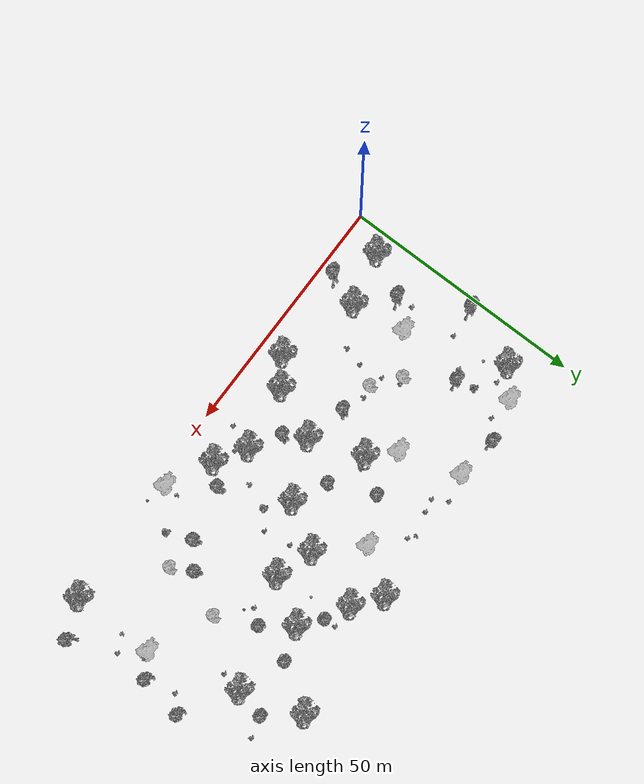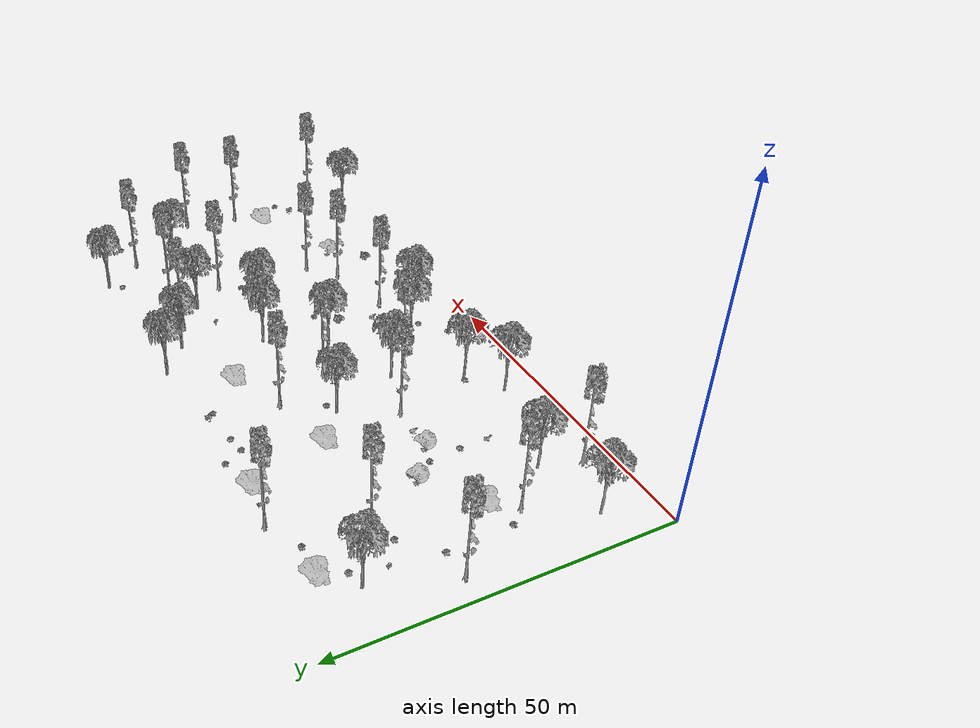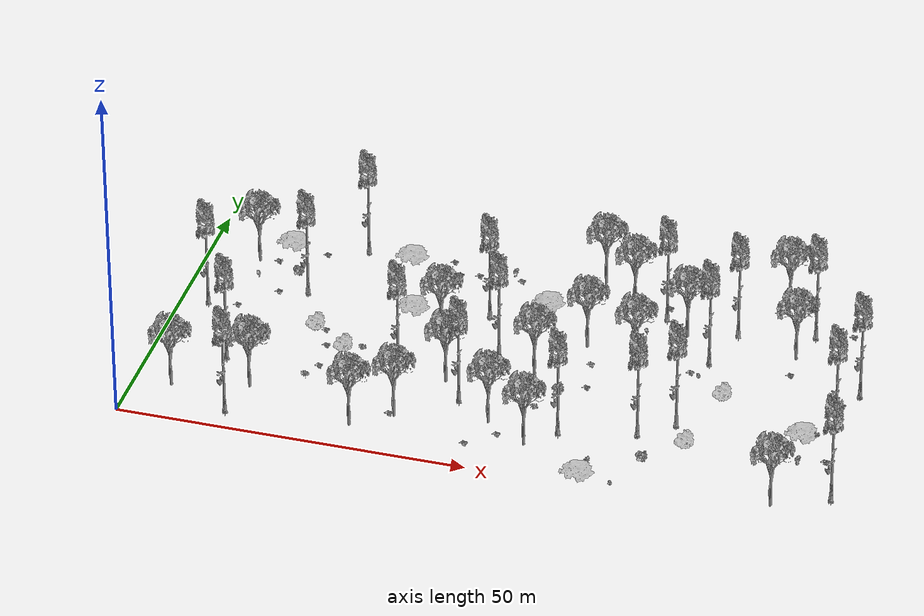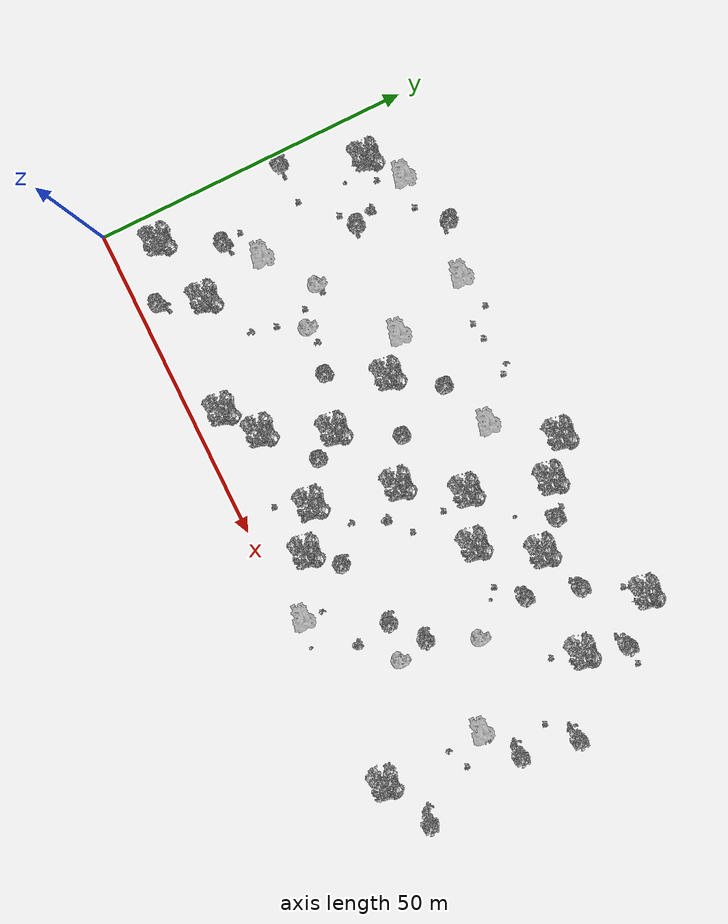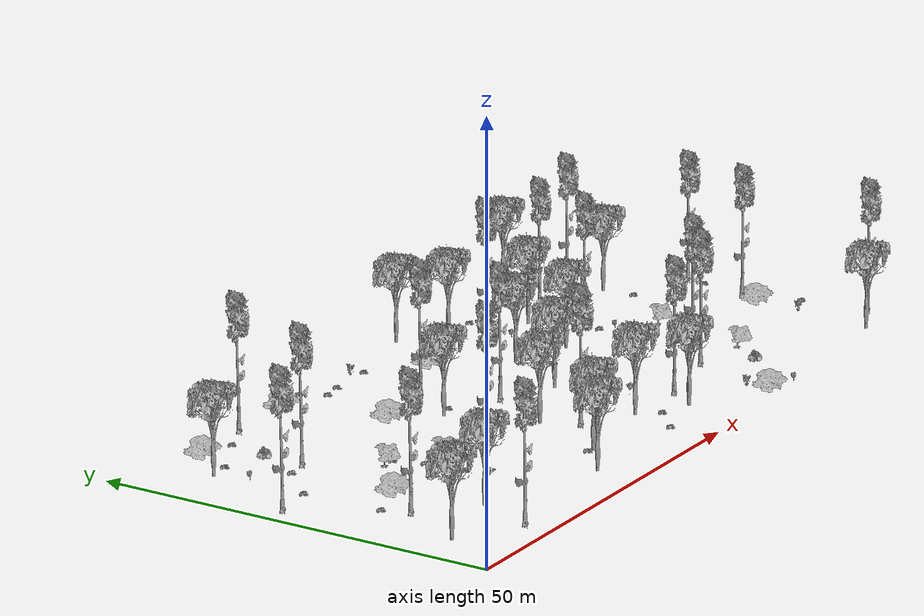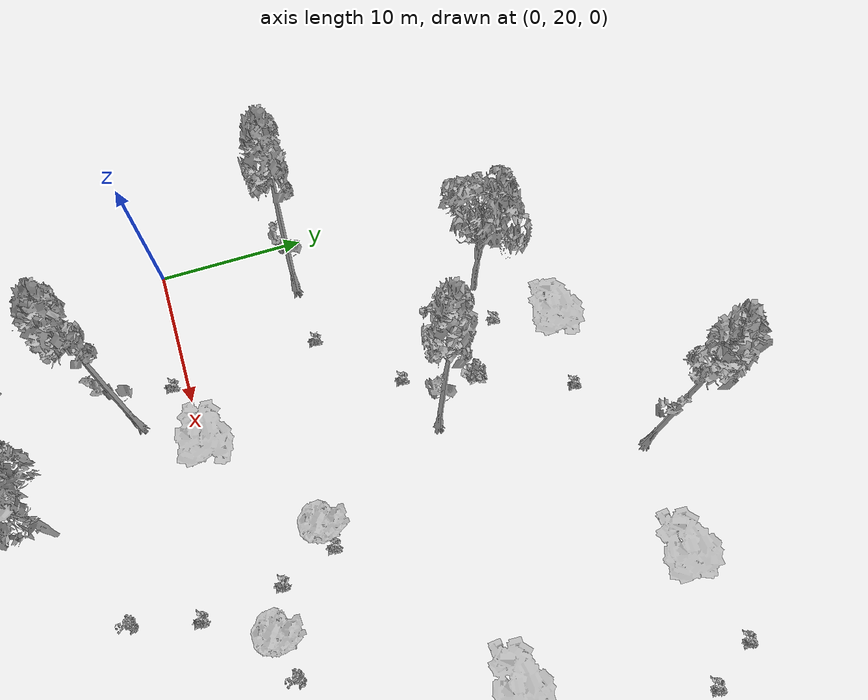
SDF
<sdf version="1.7">
 <world name="forest">
  <model name="Tree 1">
   <static>1</static>
   <pose>78.04902566851167 41.15128095072997 0 1.57079 -0 0</pose>
   <link name="link">
    <collision name="collision">
     <geometry><mesh><scale>3.5 5 3.5</scale><uri>model://tree_9/meshes/tree_9.obj</uri></mesh></geometry>
    </collision>
    <visual name="visual">
     <geometry><mesh><scale>3.5 5 3.5</scale><uri>model://tree_9/meshes/tree_9.obj</uri></mesh></geometry>
    </visual>
   </link>
  </model>
  <model name="Tree 2">
   <static>1</static>
   <pose>5.2990256685116774 7.817947617396648 0 1.57079 -0 0</pose>
   <link name="link">
    <collision name="collision">
     <geometry><mesh><scale>3.5 5 3.5</scale><uri>model://tree_2/meshes/tree_2.obj</uri></mesh></geometry>
    </collision>
    <visual name="visual">
     <geometry><mesh><scale>3.5 5 3.5</scale><uri>model://tree_2/meshes/tree_2.obj</uri></mesh></geometry>
    </visual>
   </link>
  </model>
  <model name="Tree 4">
   <static>1</static>
   <pose>41.674025668511675 18.92905872850774 0 1.57079 -0 0</pose>
   <link name="link">
    <collision name="collision">
     <geometry><mesh><scale>3.5 5 3.5</scale><uri>model://tree_2/meshes/tree_2.obj</uri></mesh></geometry>
    </collision>
    <visual name="visual">
     <geometry><mesh><scale>3.5 5 3.5</scale><uri>model://tree_2/meshes/tree_2.obj</uri></mesh></geometry>
    </visual>
   </link>
  </model>
  <model name="Tree 7">
   <static>1</static>
   <pose>65.92402566851167 30.040169839618855 0 1.57079 -0 0</pose>
   <link name="link">
    <collision name="collision">
     <geometry><mesh><scale>3.5 5 3.5</scale><uri>model://tree_2/meshes/tree_2.obj</uri></mesh></geometry>
    </collision>
    <visual name="visual">
     <geometry><mesh><scale>3.5 5 3.5</scale><uri>model://tree_2/meshes/tree_2.obj</uri></mesh></geometry>
    </visual>
   </link>
  </model>
  <model name="Tree 10">
   <static>1</static>
   <pose>11.361525668511678 44.85498465443368 0 1.57079 -0 0</pose>
   <link name="link">
    <collision name="collision">
     <geometry><mesh><scale>3 2 3</scale><uri>model://tree_3/meshes/tree_3.obj</uri></mesh></geometry>
    </collision>
    <visual name="visual">
     <geometry><mesh><scale>3 2 3</scale><uri>model://tree_3/meshes/tree_3.obj</uri></mesh></geometry>
    </visual>
   </link>
  </model>
  <model name="Tree 11">
   <static>1</static>
   <pose>59.861525668511675 11.521651321100343 0 1.57079 -0 0</pose>
   <link name="link">
    <collision name="collision">
     <geometry><mesh><scale>3.5 5 3.5</scale><uri>model://tree_9/meshes/tree_9.obj</uri></mesh></geometry>
    </collision>
    <visual name="visual">
     <geometry><mesh><scale>3.5 5 3.5</scale><uri>model://tree_9/meshes/tree_9.obj</uri></mesh></geometry>
    </visual>
   </link>
  </model>
  <model name="Tree 13">
   <static>1</static>
   <pose>96.23652566851167 22.632762432211464 0 1.57079 -0 0</pose>
   <link name="link">
    <collision name="collision">
     <geometry><mesh><scale>3.5 5 3.5</scale><uri>model://tree_9/meshes/tree_9.obj</uri></mesh></geometry>
    </collision>
    <visual name="visual">
     <geometry><mesh><scale>3.5 5 3.5</scale><uri>model://tree_9/meshes/tree_9.obj</uri></mesh></geometry>
    </visual>
   </link>
  </model>
  <model name="Tree 16">
   <static>1</static>
   <pose>32.580275668511675 33.74387354332255 0 1.57079 -0 0</pose>
   <link name="link">
    <collision name="collision">
     <geometry><mesh><scale>3 2 3</scale><uri>model://tree_3/meshes/tree_3.obj</uri></mesh></geometry>
    </collision>
    <visual name="visual">
     <geometry><mesh><scale>3 2 3</scale><uri>model://tree_3/meshes/tree_3.obj</uri></mesh></geometry>
    </visual>
   </link>
  </model>
  <model name="Tree 19">
   <static>1</static>
   <pose>56.830275668511675 48.558688358137374 0 1.57079 -0 0</pose>
   <link name="link">
    <collision name="collision">
     <geometry><mesh><scale>3.5 5 3.5</scale><uri>model://tree_2/meshes/tree_2.obj</uri></mesh></geometry>
    </collision>
    <visual name="visual">
     <geometry><mesh><scale>3.5 5 3.5</scale><uri>model://tree_2/meshes/tree_2.obj</uri></mesh></geometry>
    </visual>
   </link>
  </model>
  <model name="Tree 20">
   <static>1</static>
   <pose>44.705275668511675 15.225355024804045 0 1.57079 -0 0</pose>
   <link name="link">
    <collision name="collision">
     <geometry><mesh><scale>3.5 5 3.5</scale><uri>model://tree_9/meshes/tree_9.obj</uri></mesh></geometry>
    </collision>
    <visual name="visual">
     <geometry><mesh><scale>3.5 5 3.5</scale><uri>model://tree_9/meshes/tree_9.obj</uri></mesh></geometry>
    </visual>
   </link>
  </model>
  <model name="Tree 22">
   <static>1</static>
   <pose>20.45527566851168 26.33646613591516 0 1.57079 -0 0</pose>
   <link name="link">
    <collision name="collision">
     <geometry><mesh><scale>4 2.5 4</scale><uri>model://tree_1/meshes/tree_1.obj</uri></mesh></geometry>
    </collision>
    <visual name="visual">
     <geometry><mesh><scale>4 2.5 4</scale><uri>model://tree_1/meshes/tree_1.obj</uri></mesh></geometry>
    </visual>
   </link>
  </model>
  <model name="Tree 25">
   <static>1</static>
   <pose>87.14277566851167 37.44757724702626 0 1.57079 -0 0</pose>
   <link name="link">
    <collision name="collision">
     <geometry><mesh><scale>3.5 5 3.5</scale><uri>model://tree_2/meshes/tree_2.obj</uri></mesh></geometry>
    </collision>
    <visual name="visual">
     <geometry><mesh><scale>3.5 5 3.5</scale><uri>model://tree_2/meshes/tree_2.obj</uri></mesh></geometry>
    </visual>
   </link>
  </model>
  <model name="Tree 26">
   <static>1</static>
   <pose>14.392775668511678 4.114243913692931 0 1.57079 -0 0</pose>
   <link name="link">
    <collision name="collision">
     <geometry><mesh><scale>3.5 5 3.5</scale><uri>model://tree_9/meshes/tree_9.obj</uri></mesh></geometry>
    </collision>
    <visual name="visual">
     <geometry><mesh><scale>3.5 5 3.5</scale><uri>model://tree_9/meshes/tree_9.obj</uri></mesh></geometry>
    </visual>
   </link>
  </model>
  <model name="Tree 28">
   <static>1</static>
   <pose>50.767775668511675 39.9167130494954 0 1.57079 -0 0</pose>
   <link name="link">
    <collision name="collision">
     <geometry><mesh><scale>3 2 3</scale><uri>model://tree_3/meshes/tree_3.obj</uri></mesh></geometry>
    </collision>
    <visual name="visual">
     <geometry><mesh><scale>3 2 3</scale><uri>model://tree_3/meshes/tree_3.obj</uri></mesh></geometry>
    </visual>
   </link>
  </model>
  <model name="Tree 29">
   <static>1</static>
   <pose>99.26777566851167 6.583379716162071 0 1.57079 -0 0</pose>
   <link name="link">
    <collision name="collision">
     <geometry><mesh><scale>3.5 5 3.5</scale><uri>model://tree_9/meshes/tree_9.obj</uri></mesh></geometry>
    </collision>
    <visual name="visual">
     <geometry><mesh><scale>3.5 5 3.5</scale><uri>model://tree_9/meshes/tree_9.obj</uri></mesh></geometry>
    </visual>
   </link>
  </model>
  <model name="Tree 31">
   <static>1</static>
   <pose>75.01777566851167 17.694490827273185 0 1.57079 -0 0</pose>
   <link name="link">
    <collision name="collision">
     <geometry><mesh><scale>3.5 5 3.5</scale><uri>model://tree_9/meshes/tree_9.obj</uri></mesh></geometry>
    </collision>
    <visual name="visual">
     <geometry><mesh><scale>3.5 5 3.5</scale><uri>model://tree_9/meshes/tree_9.obj</uri></mesh></geometry>
    </visual>
   </link>
  </model>
  <model name="Tree 34">
   <static>1</static>
   <pose>3.7834006685116774 28.805601938384285 0 1.57079 -0 0</pose>
   <link name="link">
    <collision name="collision">
     <geometry><mesh><scale>3.5 5 3.5</scale><uri>model://tree_9/meshes/tree_9.obj</uri></mesh></geometry>
    </collision>
    <visual name="visual">
     <geometry><mesh><scale>3.5 5 3.5</scale><uri>model://tree_9/meshes/tree_9.obj</uri></mesh></geometry>
    </visual>
   </link>
  </model>
  <model name="Tree 37">
   <static>1</static>
   <pose>88.65840066851167 43.620416753199095 0 1.57079 -0 0</pose>
   <link name="link">
    <collision name="collision">
     <geometry><mesh><scale>3.5 5 3.5</scale><uri>model://tree_9/meshes/tree_9.obj</uri></mesh></geometry>
    </collision>
    <visual name="visual">
     <geometry><mesh><scale>3.5 5 3.5</scale><uri>model://tree_9/meshes/tree_9.obj</uri></mesh></geometry>
    </visual>
   </link>
  </model>
  <model name="Tree 38">
   <static>1</static>
   <pose>15.908400668511678 10.287083419865773 0 1.57079 -0 0</pose>
   <link name="link">
    <collision name="collision">
     <geometry><mesh><scale>3.5 5 3.5</scale><uri>model://tree_2/meshes/tree_2.obj</uri></mesh></geometry>
    </collision>
    <visual name="visual">
     <geometry><mesh><scale>3.5 5 3.5</scale><uri>model://tree_2/meshes/tree_2.obj</uri></mesh></geometry>
    </visual>
   </link>
  </model>
  <model name="Tree 40">
   <static>1</static>
   <pose>34.095900668511675 21.398194530976895 0 1.57079 -0 0</pose>
   <link name="link">
    <collision name="collision">
     <geometry><mesh><scale>3.5 5 3.5</scale><uri>model://tree_9/meshes/tree_9.obj</uri></mesh></geometry>
    </collision>
    <visual name="visual">
     <geometry><mesh><scale>3.5 5 3.5</scale><uri>model://tree_9/meshes/tree_9.obj</uri></mesh></geometry>
    </visual>
   </link>
  </model>
  <model name="Tree 43">
   <static>1</static>
   <pose>58.345900668511675 32.50930564208798 0 1.57079 -0 0</pose>
   <link name="link">
    <collision name="collision">
     <geometry><mesh><scale>3.5 5 3.5</scale><uri>model://tree_2/meshes/tree_2.obj</uri></mesh></geometry>
    </collision>
    <visual name="visual">
     <geometry><mesh><scale>3.5 5 3.5</scale><uri>model://tree_2/meshes/tree_2.obj</uri></mesh></geometry>
    </visual>
   </link>
  </model>
  <model name="Tree 46">
   <static>1</static>
   <pose>21.97090066851168 47.324120456902804 0 1.57079 -0 0</pose>
   <link name="link">
    <collision name="collision">
     <geometry><mesh><scale>3.5 5 3.5</scale><uri>model://tree_9/meshes/tree_9.obj</uri></mesh></geometry>
     <surface><friction><torsional>camera</torsional></friction></surface>
    </collision>
    <visual name="visual">
     <geometry><mesh><scale>3.5 5 3.5</scale><uri>model://tree_9/meshes/tree_9.obj</uri></mesh></geometry>
    </visual>
   </link>
  </model>
  <model name="Tree 47">
   <static>1</static>
   <pose>70.47090066851167 13.990787123569483 0 1.57079 -0 0</pose>
   <link name="link">
    <collision name="collision">
     <geometry><mesh><scale>3.5 5 3.5</scale><uri>model://tree_9/meshes/tree_9.obj</uri></mesh></geometry>
    </collision>
    <visual name="visual">
     <geometry><mesh><scale>3.5 5 3.5</scale><uri>model://tree_9/meshes/tree_9.obj</uri></mesh></geometry>
    </visual>
   </link>
  </model>
  <model name="Tree 49">
   <static>1</static>
   <pose>79.56465066851167 25.10189823468059 0 1.57079 -0 0</pose>
   <link name="link">
    <collision name="collision">
     <geometry><mesh><scale>4 2.5 4</scale><uri>model://tree_1/meshes/tree_1.obj</uri></mesh></geometry>
    </collision>
    <visual name="visual">
     <geometry><mesh><scale>4 2.5 4</scale><uri>model://tree_1/meshes/tree_1.obj</uri></mesh></geometry>
    </visual>
   </link>
  </model>
  <model name="Tree 52">
   <static>1</static>
   <pose>43.189650668511675 36.21300934579169 0 1.57079 -0 0</pose>
   <link name="link">
    <collision name="collision">
     <geometry><mesh><scale>3.5 5 3.5</scale><uri>model://tree_9/meshes/tree_9.obj</uri></mesh></geometry>
    </collision>
    <visual name="visual">
     <geometry><mesh><scale>3.5 5 3.5</scale><uri>model://tree_9/meshes/tree_9.obj</uri></mesh></geometry>
    </visual>
   </link>
  </model>
  <model name="Tree 53">
   <static>1</static>
   <pose>91.68965066851167 2.8796760124583685 0 1.57079 -0 0</pose>
   <link name="link">
    <collision name="collision">
     <geometry><mesh><scale>3.5 5 3.5</scale><uri>model://tree_2/meshes/tree_2.obj</uri></mesh></geometry>
    </collision>
    <visual name="visual">
     <geometry><mesh><scale>3.5 5 3.5</scale><uri>model://tree_2/meshes/tree_2.obj</uri></mesh></geometry>
    </visual>
   </link>
  </model>
  <model name="Tree 55">
   <static>1</static>
   <pose>67.43965066851167 42.38584885196454 0 1.57079 -0 0</pose>
   <link name="link">
    <collision name="collision">
     <geometry><mesh><scale>3.5 5 3.5</scale><uri>model://tree_9/meshes/tree_9.obj</uri></mesh></geometry>
    </collision>
    <visual name="visual">
     <geometry><mesh><scale>3.5 5 3.5</scale><uri>model://tree_9/meshes/tree_9.obj</uri></mesh></geometry>
    </visual>
   </link>
  </model>
  <model name="Tree 56">
   <static>1</static>
   <pose>37.127150668511675 9.05251551863121 0 1.57079 -0 0</pose>
   <link name="link">
    <collision name="collision">
     <geometry><mesh><scale>3.5 5 3.5</scale><uri>model://tree_2/meshes/tree_2.obj</uri></mesh></geometry>
    </collision>
    <visual name="visual">
     <geometry><mesh><scale>3.5 5 3.5</scale><uri>model://tree_2/meshes/tree_2.obj</uri></mesh></geometry>
    </visual>
   </link>
  </model>
  <model name="Tree 58">
   <static>1</static>
   <pose>12.877150668511678 20.16362662974231 0 1.57079 -0 0</pose>
   <link name="link">
    <collision name="collision">
     <geometry><mesh><scale>3 2 3</scale><uri>model://tree_3/meshes/tree_3.obj</uri></mesh></geometry>
    </collision>
    <visual name="visual">
     <geometry><mesh><scale>3 2 3</scale><uri>model://tree_3/meshes/tree_3.obj</uri></mesh></geometry>
    </visual>
   </link>
  </model>
  <model name="Tree 61">
   <static>1</static>
   <pose>97.75215066851167 31.274737740853425 0 1.57079 -0 0</pose>
   <link name="link">
    <collision name="collision">
     <geometry><mesh><scale>3.5 5 3.5</scale><uri>model://tree_9/meshes/tree_9.obj</uri></mesh></geometry>
    </collision>
    <visual name="visual">
     <geometry><mesh><scale>3.5 5 3.5</scale><uri>model://tree_9/meshes/tree_9.obj</uri></mesh></geometry>
    </visual>
   </link>
  </model>
  <model name="Tree 64">
   <static>1</static>
   <pose>28.79121316851168 46.089552555668234 0 1.57079 -0 0</pose>
   <link name="link">
    <collision name="collision">
     <geometry><mesh><scale>3 2 3</scale><uri>model://tree_3/meshes/tree_3.obj</uri></mesh></geometry>
    </collision>
    <visual name="visual">
     <geometry><mesh><scale>3 2 3</scale><uri>model://tree_3/meshes/tree_3.obj</uri></mesh></geometry>
    </visual>
   </link>
  </model>
  <model name="Tree 65">
   <static>1</static>
   <pose>77.29121316851167 12.756219222334906 0 1.57079 -0 0</pose>
   <link name="link">
    <collision name="collision">
     <geometry><mesh><scale>4 2.5 4</scale><uri>model://tree_1/meshes/tree_1.obj</uri></mesh></geometry>
    </collision>
    <visual name="visual">
     <geometry><mesh><scale>4 2.5 4</scale><uri>model://tree_1/meshes/tree_1.obj</uri></mesh></geometry>
    </visual>
   </link>
  </model>
  <model name="Tree 67">
   <static>1</static>
   <pose>53.041213168511675 23.86733033344602 0 1.57079 -0 0</pose>
   <link name="link">
    <collision name="collision">
     <geometry><mesh><scale>3.5 5 3.5</scale><uri>model://tree_2/meshes/tree_2.obj</uri></mesh></geometry>
    </collision>
    <visual name="visual">
     <geometry><mesh><scale>3.5 5 3.5</scale><uri>model://tree_2/meshes/tree_2.obj</uri></mesh></geometry>
    </visual>
   </link>
  </model>
  <model name="Tree 70">
   <static>1</static>
   <pose>16.66621316851168 34.97844144455712 0 1.57079 -0 0</pose>
   <link name="link">
    <collision name="collision">
     <geometry><mesh><scale>3.5 5 3.5</scale><uri>model://tree_9/meshes/tree_9.obj</uri></mesh></geometry>
    </collision>
    <visual name="visual">
     <geometry><mesh><scale>3.5 5 3.5</scale><uri>model://tree_9/meshes/tree_9.obj</uri></mesh></geometry>
    </visual>
   </link>
  </model>
  <model name="Tree 71">
   <static>1</static>
   <pose>65.16621316851167 1.6451081112238057 0 1.57079 -0 0</pose>
   <link name="link">
    <collision name="collision">
     <geometry><mesh><scale>3 2 3</scale><uri>model://tree_3/meshes/tree_3.obj</uri></mesh></geometry>
    </collision>
    <visual name="visual">
     <geometry><mesh><scale>3 2 3</scale><uri>model://tree_3/meshes/tree_3.obj</uri></mesh></geometry>
    </visual>
   </link>
  </model>
  <model name="Tree 73">
   <static>1</static>
   <pose>83.35371316851167 49.793256259371944 0 1.57079 -0 0</pose>
   <link name="link">
    <collision name="collision">
     <geometry><mesh><scale>3.5 5 3.5</scale><uri>model://tree_2/meshes/tree_2.obj</uri></mesh></geometry>
    </collision>
    <visual name="visual">
     <geometry><mesh><scale>3.5 5 3.5</scale><uri>model://tree_2/meshes/tree_2.obj</uri></mesh></geometry>
    </visual>
   </link>
  </model>
  <model name="Tree 74">
   <static>1</static>
   <pose>10.603713168511678 16.459922926038615 0 1.57079 -0 0</pose>
   <link name="link">
    <collision name="collision">
     <geometry><mesh><scale>3.5 5 3.5</scale><uri>model://tree_9/meshes/tree_9.obj</uri></mesh></geometry>
    </collision>
    <visual name="visual">
     <geometry><mesh><scale>3.5 5 3.5</scale><uri>model://tree_9/meshes/tree_9.obj</uri></mesh></geometry>
    </visual>
   </link>
  </model>
  <model name="Tree 76">
   <static>1</static>
   <pose>46.978713168511675 27.571034037149715 0 1.57079 -0 0</pose>
   <link name="link">
    <collision name="collision">
     <geometry><mesh><scale>3.5 5 3.5</scale><uri>model://tree_9/meshes/tree_9.obj</uri></mesh></geometry>
    </collision>
    <visual name="visual">
     <geometry><mesh><scale>3.5 5 3.5</scale><uri>model://tree_9/meshes/tree_9.obj</uri></mesh></geometry>
    </visual>
   </link>
  </model>
  <model name="Tree 79">
   <static>1</static>
   <pose>71.22871316851167 38.68214514826083 0 1.57079 -0 0</pose>
   <link name="link">
    <collision name="collision">
     <geometry><mesh><scale>3.5 5 3.5</scale><uri>model://tree_2/meshes/tree_2.obj</uri></mesh></geometry>
    </collision>
    <visual name="visual">
     <geometry><mesh><scale>3.5 5 3.5</scale><uri>model://tree_2/meshes/tree_2.obj</uri></mesh></geometry>
    </visual>
   </link>
  </model>
  <model name="Tree 80">
   <static>1</static>
   <pose>31.82246316851168 5.348811814927501 0 1.57079 -0 0</pose>
   <link name="link">
    <collision name="collision">
     <geometry><mesh><scale>3.5 5 3.5</scale><uri>model://tree_2/meshes/tree_2.obj</uri></mesh></geometry>
    </collision>
    <visual name="visual">
     <geometry><mesh><scale>3.5 5 3.5</scale><uri>model://tree_2/meshes/tree_2.obj</uri></mesh></geometry>
    </visual>
   </link>
  </model>
  <model name="Tree 82">
   <static>1</static>
   <pose>7.5724631685116774 40.73975831698512 0 1.57079 -0 0</pose>
   <link name="link">
    <collision name="collision">
     <geometry><mesh><scale>3.5 5 3.5</scale><uri>model://tree_2/meshes/tree_2.obj</uri></mesh></geometry>
    </collision>
    <visual name="visual">
     <geometry><mesh><scale>3.5 5 3.5</scale><uri>model://tree_2/meshes/tree_2.obj</uri></mesh></geometry>
    </visual>
   </link>
  </model>
  <model name="Tree 83">
   <static>1</static>
   <pose>56.072463168511675 7.406424983651796 0 1.57079 -0 0</pose>
   <link name="link">
    <collision name="collision">
     <geometry><mesh><scale>3.5 5 3.5</scale><uri>model://tree_2/meshes/tree_2.obj</uri></mesh></geometry>
    </collision>
    <visual name="visual">
     <geometry><mesh><scale>3.5 5 3.5</scale><uri>model://tree_2/meshes/tree_2.obj</uri></mesh></geometry>
    </visual>
   </link>
  </model>
  <model name="Tree 85">
   <static>1</static>
   <pose>92.44746316851167 18.51753609476289 0 1.57079 -0 0</pose>
   <link name="link">
    <collision name="collision">
     <geometry><mesh><scale>3 2 3</scale><uri>model://tree_3/meshes/tree_3.obj</uri></mesh></geometry>
    </collision>
    <visual name="visual">
     <geometry><mesh><scale>3 2 3</scale><uri>model://tree_3/meshes/tree_3.obj</uri></mesh></geometry>
    </visual>
   </link>
  </model>
  <model name="Tree 88">
   <static>1</static>
   <pose>37.884963168511675 29.628647205874003 0 1.57079 -0 0</pose>
   <link name="link">
    <collision name="collision">
     <geometry><mesh><scale>3.5 5 3.5</scale><uri>model://tree_2/meshes/tree_2.obj</uri></mesh></geometry>
    </collision>
    <visual name="visual">
     <geometry><mesh><scale>3.5 5 3.5</scale><uri>model://tree_2/meshes/tree_2.obj</uri></mesh></geometry>
    </visual>
   </link>
  </model>
  <model name="Tree 91">
   <static>1</static>
   <pose>62.134963168511675 44.44346202068881 0 1.57079 -0 0</pose>
   <link name="link">
    <collision name="collision">
     <geometry><mesh><scale>3.5 5 3.5</scale><uri>model://tree_2/meshes/tree_2.obj</uri></mesh></geometry>
    </collision>
    <visual name="visual">
     <geometry><mesh><scale>3.5 5 3.5</scale><uri>model://tree_2/meshes/tree_2.obj</uri></mesh></geometry>
    </visual>
   </link>
  </model>
  <model name="Tree 92">
   <static>1</static>
   <pose>50.009963168511675 11.110128687355491 0 1.57079 -0 0</pose>
   <link name="link">
    <collision name="collision">
     <geometry><mesh><scale>3.5 5 3.5</scale><uri>model://tree_2/meshes/tree_2.obj</uri></mesh></geometry>
    </collision>
    <visual name="visual">
     <geometry><mesh><scale>3.5 5 3.5</scale><uri>model://tree_2/meshes/tree_2.obj</uri></mesh></geometry>
    </visual>
   </link>
  </model>
  <model name="Tree 94">
   <static>1</static>
   <pose>25.75996316851168 22.221239798466613 0 1.57079 -0 0</pose>
   <link name="link">
    <collision name="collision">
     <geometry><mesh><scale>4 2.5 4</scale><uri>model://tree_1/meshes/tree_1.obj</uri></mesh></geometry>
    </collision>
    <visual name="visual">
     <geometry><mesh><scale>4 2.5 4</scale><uri>model://tree_1/meshes/tree_1.obj</uri></mesh></geometry>
    </visual>
   </link>
  </model>
  <model name="Tree 97">
   <static>1</static>
   <pose>75.77558816851167 33.3323509095777 0 1.57079 -0 0</pose>
   <link name="link">
    <collision name="collision">
     <geometry><mesh><scale>3.5 5 3.5</scale><uri>model://tree_9/meshes/tree_9.obj</uri></mesh></geometry>
    </collision>
    <visual name="visual">
     <geometry><mesh><scale>3.5 5 3.5</scale><uri>model://tree_9/meshes/tree_9.obj</uri></mesh></geometry>
    </visual>
   </link>
  </model>
  <model name="Bush 0">
   <static>1</static>
   <pose>39.10759396723099 45.29086941656695 0 1.57079 -0 0</pose>
   <link name="link">
    <collision name="collision">
     <geometry><mesh><scale>2 2 2</scale><uri>model://bush_2/meshes/bush_2.obj</uri></mesh></geometry>
     <surface><contact><collide_without_contact>false</collide_without_contact></contact></surface>
    </collision>
    <visual name="visual">
     <geometry><mesh><scale>2 2 2</scale><uri>model://bush_2/meshes/bush_2.obj</uri></mesh></geometry>
    </visual>
   </link>
  </model>
  <model name="Bush 2">
   <static>1</static>
   <pose>60.91315639784953 22.65805977310977 0 1.57079 -0 0</pose>
   <link name="link">
    <collision name="collision">
     <geometry><mesh><scale>2 2 2</scale><uri>model://bush_2/meshes/bush_2.obj</uri></mesh></geometry>
     <surface><contact><collide_without_contact>false</collide_without_contact></contact></surface>
    </collision>
    <visual name="visual">
     <geometry><mesh><scale>2 2 2</scale><uri>model://bush_2/meshes/bush_2.obj</uri></mesh></geometry>
    </visual>
   </link>
  </model>
  <model name="Bush 5">
   <static>1</static>
   <pose>23.200698897189586 22.747511301796237 0 1.57079 -0 0</pose>
   <link name="link">
    <collision name="collision">
     <geometry><mesh><scale>2 2 2</scale><uri>model://bush_2/meshes/bush_2.obj</uri></mesh></geometry>
     <surface><contact><collide_without_contact>false</collide_without_contact></contact></surface>
    </collision>
    <visual name="visual">
     <geometry><mesh><scale>2 2 2</scale><uri>model://bush_2/meshes/bush_2.obj</uri></mesh></geometry>
    </visual>
   </link>
  </model>
  <model name="Bush 8">
   <static>1</static>
   <pose>34.72155342548152 47.7158286145319 0 1.57079 -0 0</pose>
   <link name="link">
    <collision name="collision">
     <geometry><mesh><scale>2 2 2</scale><uri>model://bush_2/meshes/bush_2.obj</uri></mesh></geometry>
     <surface><contact><collide_without_contact>false</collide_without_contact></contact></surface>
    </collision>
    <visual name="visual">
     <geometry><mesh><scale>2 2 2</scale><uri>model://bush_2/meshes/bush_2.obj</uri></mesh></geometry>
    </visual>
   </link>
  </model>
  <model name="Bush 9">
   <static>1</static>
   <pose>14.167379285721815 38.22407548175832 0 1.57079 -0 0</pose>
   <link name="link">
    <collision name="collision">
     <geometry><mesh><scale>2 2 2</scale><uri>model://bush_1/meshes/bush_1.obj</uri></mesh></geometry>
     <surface><contact><collide_without_contact>false</collide_without_contact></contact></surface>
    </collision>
    <visual name="visual">
     <geometry><mesh><scale>2 2 2</scale><uri>model://bush_1/meshes/bush_1.obj</uri></mesh></geometry>
    </visual>
   </link>
  </model>
  <model name="Bush 11">
   <static>1</static>
   <pose>51.95406533226869 8.564370703661993 0 1.57079 -0 0</pose>
   <link name="link">
    <collision name="collision">
     <geometry><mesh><scale>2 2 2</scale><uri>model://bush_2/meshes/bush_2.obj</uri></mesh></geometry>
     <surface><contact><collide_without_contact>false</collide_without_contact></contact></surface>
    </collision>
    <visual name="visual">
     <geometry><mesh><scale>2 2 2</scale><uri>model://bush_2/meshes/bush_2.obj</uri></mesh></geometry>
    </visual>
   </link>
  </model>
  <model name="Bush 16">
   <static>1</static>
   <pose>93.87365179950011 44.7418883417802 0 1.57079 -0 0</pose>
   <link name="link">
    <collision name="collision">
     <geometry><mesh><scale>2 2 2</scale><uri>model://bush_2/meshes/bush_2.obj</uri></mesh></geometry>
     <surface><contact><collide_without_contact>false</collide_without_contact></contact></surface>
    </collision>
    <visual name="visual">
     <geometry><mesh><scale>2 2 2</scale><uri>model://bush_2/meshes/bush_2.obj</uri></mesh></geometry>
    </visual>
   </link>
  </model>
  <model name="Bush 17">
   <static>1</static>
   <pose>65.62989449662888 5.011041606496335 0 1.57079 -0 0</pose>
   <link name="link">
    <collision name="collision">
     <geometry><mesh><scale>2 2 2</scale><uri>model://bush_4/meshes/bush_4.obj</uri></mesh></geometry>
     <surface><contact><collide_without_contact>false</collide_without_contact></contact></surface>
    </collision>
    <visual name="visual">
     <geometry><mesh><scale>2 2 2</scale><uri>model://bush_4/meshes/bush_4.obj</uri></mesh></geometry>
    </visual>
   </link>
  </model>
  <model name="Bush 18">
   <static>1</static>
   <pose>75.44049211344661 28.786639722175806 0 1.57079 -0 0</pose>
   <link name="link">
    <collision name="collision">
     <geometry><mesh><scale>2 2 2</scale><uri>model://bush_0/meshes/bush_0.obj</uri></mesh></geometry>
     <surface><contact><collide_without_contact>false</collide_without_contact></contact></surface>
    </collision>
    <visual name="visual">
     <geometry><mesh><scale>2 2 2</scale><uri>model://bush_0/meshes/bush_0.obj</uri></mesh></geometry>
    </visual>
   </link>
  </model>
  <model name="Bush 19">
   <static>1</static>
   <pose>70.05457292383605 1.0731457101153552 0 1.57079 -0 0</pose>
   <link name="link">
    <collision name="collision">
     <geometry><mesh><scale>2 2 2</scale><uri>model://bush_0/meshes/bush_0.obj</uri></mesh></geometry>
     <surface><contact><collide_without_contact>false</collide_without_contact></contact></surface>
    </collision>
    <visual name="visual">
     <geometry><mesh><scale>2 2 2</scale><uri>model://bush_0/meshes/bush_0.obj</uri></mesh></geometry>
    </visual>
   </link>
  </model>
  <model name="Bush 20">
   <static>1</static>
   <pose>48.23415871945133 5.343999596144286 0 1.57079 -0 0</pose>
   <link name="link">
    <collision name="collision">
     <geometry><mesh><scale>2 2 2</scale><uri>model://bush_2/meshes/bush_2.obj</uri></mesh></geometry>
     <surface><contact><collide_without_contact>false</collide_without_contact></contact></surface>
    </collision>
    <visual name="visual">
     <geometry><mesh><scale>2 2 2</scale><uri>model://bush_2/meshes/bush_2.obj</uri></mesh></geometry>
    </visual>
   </link>
  </model>
  <model name="Bush 23">
   <static>1</static>
   <pose>67.33088608069396 44.660101220235816 0 1.57079 -0 0</pose>
   <link name="link">
    <collision name="collision">
     <geometry><mesh><scale>2 2 2</scale><uri>model://bush_2/meshes/bush_2.obj</uri></mesh></geometry>
     <surface><contact><collide_without_contact>false</collide_without_contact></contact></surface>
    </collision>
    <visual name="visual">
     <geometry><mesh><scale>2 2 2</scale><uri>model://bush_2/meshes/bush_2.obj</uri></mesh></geometry>
    </visual>
   </link>
  </model>
  <model name="Bush 24">
   <static>1</static>
   <pose>39.925103386444114 30.300545021978124 0 1.57079 -0 0</pose>
   <link name="link">
    <collision name="collision">
     <geometry><mesh><scale>2 2 2</scale><uri>model://bush_2/meshes/bush_2.obj</uri></mesh></geometry>
     <surface><contact><collide_without_contact>false</collide_without_contact></contact></surface>
    </collision>
    <visual name="visual">
     <geometry><mesh><scale>2 2 2</scale><uri>model://bush_2/meshes/bush_2.obj</uri></mesh></geometry>
    </visual>
   </link>
  </model>
  <model name="Bush 25">
   <static>1</static>
   <pose>10.331525540494193 41.18528358238744 0 1.57079 -0 0</pose>
   <link name="link">
    <collision name="collision">
     <geometry><mesh><scale>2 2 2</scale><uri>model://bush_2/meshes/bush_2.obj</uri></mesh></geometry>
     <surface><contact><collide_without_contact>false</collide_without_contact></contact></surface>
    </collision>
    <visual name="visual">
     <geometry><mesh><scale>2 2 2</scale><uri>model://bush_2/meshes/bush_2.obj</uri></mesh></geometry>
    </visual>
   </link>
  </model>
  <model name="Bush 26">
   <static>1</static>
   <pose>93.10849130918741 12.988673965085205 0 1.57079 -0 0</pose>
   <link name="link">
    <collision name="collision">
     <geometry><mesh><scale>2 2 2</scale><uri>model://bush_4/meshes/bush_4.obj</uri></mesh></geometry>
     <surface><contact><collide_without_contact>false</collide_without_contact></contact></surface>
    </collision>
    <visual name="visual">
     <geometry><mesh><scale>2 2 2</scale><uri>model://bush_4/meshes/bush_4.obj</uri></mesh></geometry>
    </visual>
   </link>
  </model>
  <model name="Bush 28">
   <static>1</static>
   <pose>95.97862685097468 27.928333413914714 0 1.57079 -0 0</pose>
   <link name="link">
    <collision name="collision">
     <geometry><mesh><scale>2 2 2</scale><uri>model://bush_2/meshes/bush_2.obj</uri></mesh></geometry>
     <surface><contact><collide_without_contact>false</collide_without_contact></contact></surface>
    </collision>
    <visual name="visual">
     <geometry><mesh><scale>2 2 2</scale><uri>model://bush_2/meshes/bush_2.obj</uri></mesh></geometry>
    </visual>
   </link>
  </model>
  <model name="Bush 31">
   <static>1</static>
   <pose>72.61515156690987 7.602775289981892 0 1.57079 -0 0</pose>
   <link name="link">
    <collision name="collision">
     <geometry><mesh><scale>2 2 2</scale><uri>model://bush_1/meshes/bush_1.obj</uri></mesh></geometry>
     <surface><contact><collide_without_contact>false</collide_without_contact></contact></surface>
    </collision>
    <visual name="visual">
     <geometry><mesh><scale>2 2 2</scale><uri>model://bush_1/meshes/bush_1.obj</uri></mesh></geometry>
    </visual>
   </link>
  </model>
  <model name="Bush 32">
   <static>1</static>
   <pose>16.611582711867413 44.570068393896676 0 1.57079 -0 0</pose>
   <link name="link">
    <collision name="collision">
     <geometry><mesh><scale>2 2 2</scale><uri>model://bush_2/meshes/bush_2.obj</uri></mesh></geometry>
     <surface><contact><collide_without_contact>false</collide_without_contact></contact></surface>
    </collision>
    <visual name="visual">
     <geometry><mesh><scale>2 2 2</scale><uri>model://bush_2/meshes/bush_2.obj</uri></mesh></geometry>
    </visual>
   </link>
  </model>
  <model name="Bush 33">
   <static>1</static>
   <pose>12.719791461886732 33.71600011801203 0 1.57079 -0 0</pose>
   <link name="link">
    <collision name="collision">
     <geometry><mesh><scale>2 2 2</scale><uri>model://bush_2/meshes/bush_2.obj</uri></mesh></geometry>
     <surface><contact><collide_without_contact>false</collide_without_contact></contact></surface>
    </collision>
    <visual name="visual">
     <geometry><mesh><scale>2 2 2</scale><uri>model://bush_2/meshes/bush_2.obj</uri></mesh></geometry>
    </visual>
   </link>
  </model>
  <model name="Bush 36">
   <static>1</static>
   <pose>22.01343129290531 26.32884472846048 0 1.57079 -0 0</pose>
   <link name="link">
    <collision name="collision">
     <geometry><mesh><scale>2 2 2</scale><uri>model://bush_2/meshes/bush_2.obj</uri></mesh></geometry>
     <surface><contact><collide_without_contact>false</collide_without_contact></contact></surface>
    </collision>
    <visual name="visual">
     <geometry><mesh><scale>2 2 2</scale><uri>model://bush_2/meshes/bush_2.obj</uri></mesh></geometry>
    </visual>
   </link>
  </model>
  <model name="Bush 38">
   <static>1</static>
   <pose>22.909651891335283 14.081763684948768 0 1.57079 -0 0</pose>
   <link name="link">
    <collision name="collision">
     <geometry><mesh><scale>2 2 2</scale><uri>model://bush_5/meshes/bush_5.obj</uri></mesh></geometry>
     <surface><contact><collide_without_contact>false</collide_without_contact></contact></surface>
    </collision>
    <visual name="visual">
     <geometry><mesh><scale>2 2 2</scale><uri>model://bush_5/meshes/bush_5.obj</uri></mesh></geometry>
    </visual>
   </link>
  </model>
  <model name="Bush 40">
   <static>1</static>
   <pose>87.3746652531622 33.180943202543816 0 1.57079 -0 0</pose>
   <link name="link">
    <collision name="collision">
     <geometry><mesh><scale>2 2 2</scale><uri>model://bush_2/meshes/bush_2.obj</uri></mesh></geometry>
     <surface><contact><collide_without_contact>false</collide_without_contact></contact></surface>
    </collision>
    <visual name="visual">
     <geometry><mesh><scale>2 2 2</scale><uri>model://bush_2/meshes/bush_2.obj</uri></mesh></geometry>
    </visual>
   </link>
  </model>
  <model name="Bush 43">
   <static>1</static>
   <pose>23.703662437482794 17.716906869608223 0 1.57079 -0 0</pose>
   <link name="link">
    <collision name="collision">
     <geometry><mesh><scale>2 2 2</scale><uri>model://bush_2/meshes/bush_2.obj</uri></mesh></geometry>
     <surface><contact><collide_without_contact>false</collide_without_contact></contact></surface>
    </collision>
    <visual name="visual">
     <geometry><mesh><scale>2 2 2</scale><uri>model://bush_2/meshes/bush_2.obj</uri></mesh></geometry>
    </visual>
   </link>
  </model>
  <model name="Bush 45">
   <static>1</static>
   <pose>36.38878320451327 9.339703783682026 0 1.57079 -0 0</pose>
   <link name="link">
    <collision name="collision">
     <geometry><mesh><scale>2 2 2</scale><uri>model://bush_2/meshes/bush_2.obj</uri></mesh></geometry>
     <surface><contact><collide_without_contact>false</collide_without_contact></contact></surface>
    </collision>
    <visual name="visual">
     <geometry><mesh><scale>2 2 2</scale><uri>model://bush_2/meshes/bush_2.obj</uri></mesh></geometry>
    </visual>
   </link>
  </model>
  <model name="Bush 46">
   <static>1</static>
   <pose>8.831109033805957 36.63328979643727 0 1.57079 -0 0</pose>
   <link name="link">
    <collision name="collision">
     <geometry><mesh><scale>2 2 2</scale><uri>model://bush_0/meshes/bush_0.obj</uri></mesh></geometry>
     <surface><contact><collide_without_contact>false</collide_without_contact></contact></surface>
    </collision>
    <visual name="visual">
     <geometry><mesh><scale>2 2 2</scale><uri>model://bush_0/meshes/bush_0.obj</uri></mesh></geometry>
    </visual>
   </link>
  </model>
  <model name="Bush 47">
   <static>1</static>
   <pose>73.88302602682474 30.082228053295566 0 1.57079 -0 0</pose>
   <link name="link">
    <collision name="collision">
     <geometry><mesh><scale>2 2 2</scale><uri>model://bush_2/meshes/bush_2.obj</uri></mesh></geometry>
     <surface><contact><collide_without_contact>false</collide_without_contact></contact></surface>
    </collision>
    <visual name="visual">
     <geometry><mesh><scale>2 2 2</scale><uri>model://bush_2/meshes/bush_2.obj</uri></mesh></geometry>
    </visual>
   </link>
  </model>
  <model name="Bush 50">
   <static>1</static>
   <pose>45.29765395066634 45.61708744265613 0 1.57079 -0 0</pose>
   <link name="link">
    <collision name="collision">
     <geometry><mesh><scale>2 2 2</scale><uri>model://bush_2/meshes/bush_2.obj</uri></mesh></geometry>
     <surface><contact><collide_without_contact>false</collide_without_contact></contact></surface>
    </collision>
    <visual name="visual">
     <geometry><mesh><scale>2 2 2</scale><uri>model://bush_2/meshes/bush_2.obj</uri></mesh></geometry>
    </visual>
   </link>
  </model>
  <model name="Bush 52">
   <static>1</static>
   <pose>55.58925124732766 15.101756817935168 0 1.57079 -0 0</pose>
   <link name="link">
    <collision name="collision">
     <geometry><mesh><scale>2 2 2</scale><uri>model://bush_5/meshes/bush_5.obj</uri></mesh></geometry>
     <surface><contact><collide_without_contact>false</collide_without_contact></contact></surface>
    </collision>
    <visual name="visual">
     <geometry><mesh><scale>2 2 2</scale><uri>model://bush_5/meshes/bush_5.obj</uri></mesh></geometry>
    </visual>
   </link>
  </model>
  <model name="Bush 53">
   <static>1</static>
   <pose>96.61611762483119 14.440079776822301 0 1.57079 -0 0</pose>
   <link name="link">
    <collision name="collision">
     <geometry><mesh><scale>2 2 2</scale><uri>model://bush_2/meshes/bush_2.obj</uri></mesh></geometry>
     <surface><contact><collide_without_contact>false</collide_without_contact></contact></surface>
    </collision>
    <visual name="visual">
     <geometry><mesh><scale>2 2 2</scale><uri>model://bush_2/meshes/bush_2.obj</uri></mesh></geometry>
    </visual>
   </link>
  </model>
  <model name="Bush 54">
   <static>1</static>
   <pose>8.427232396345492 18.96288190377541 0 1.57079 -0 0</pose>
   <link name="link">
    <collision name="collision">
     <geometry><mesh><scale>2 2 2</scale><uri>model://bush_2/meshes/bush_2.obj</uri></mesh></geometry>
     <surface><contact><collide_without_contact>false</collide_without_contact></contact></surface>
    </collision>
    <visual name="visual">
     <geometry><mesh><scale>2 2 2</scale><uri>model://bush_2/meshes/bush_2.obj</uri></mesh></geometry>
    </visual>
   </link>
  </model>
  <model name="Bush 55">
   <static>1</static>
   <pose>57.55916308537514 19.824792629033468 0 1.57079 -0 0</pose>
   <link name="link">
    <collision name="collision">
     <geometry><mesh><scale>2 2 2</scale><uri>model://bush_1/meshes/bush_1.obj</uri></mesh></geometry>
     <surface><contact><collide_without_contact>false</collide_without_contact></contact></surface>
    </collision>
    <visual name="visual">
     <geometry><mesh><scale>2 2 2</scale><uri>model://bush_1/meshes/bush_1.obj</uri></mesh></geometry>
    </visual>
   </link>
  </model>
  <model name="Bush 58">
   <static>1</static>
   <pose>60.08245590789569 28.243348639429456 0 1.57079 -0 0</pose>
   <link name="link">
    <collision name="collision">
     <geometry><mesh><scale>2 2 2</scale><uri>model://bush_2/meshes/bush_2.obj</uri></mesh></geometry>
     <surface><contact><collide_without_contact>false</collide_without_contact></contact></surface>
    </collision>
    <visual name="visual">
     <geometry><mesh><scale>2 2 2</scale><uri>model://bush_2/meshes/bush_2.obj</uri></mesh></geometry>
    </visual>
   </link>
  </model>
  <model name="Bush 61">
   <static>1</static>
   <pose>82.47866739028456 47.83019423036015 0 1.57079 -0 0</pose>
   <link name="link">
    <collision name="collision">
     <geometry><mesh><scale>2 2 2</scale><uri>model://bush_2/meshes/bush_2.obj</uri></mesh></geometry>
     <surface><contact><collide_without_contact>false</collide_without_contact></contact></surface>
    </collision>
    <visual name="visual">
     <geometry><mesh><scale>2 2 2</scale><uri>model://bush_2/meshes/bush_2.obj</uri></mesh></geometry>
    </visual>
   </link>
  </model>
  <model name="Bush 65">
   <static>1</static>
   <pose>44.03085580426028 46.63213192421462 0 1.57079 -0 0</pose>
   <link name="link">
    <collision name="collision">
     <geometry><mesh><scale>2 2 2</scale><uri>model://bush_4/meshes/bush_4.obj</uri></mesh></geometry>
     <surface><contact><collide_without_contact>false</collide_without_contact></contact></surface>
    </collision>
    <visual name="visual">
     <geometry><mesh><scale>2 2 2</scale><uri>model://bush_4/meshes/bush_4.obj</uri></mesh></geometry>
    </visual>
   </link>
  </model>
  <model name="Bush 66">
   <static>1</static>
   <pose>94.30957514933944 19.220203339405302 0 1.57079 -0 0</pose>
   <link name="link">
    <collision name="collision">
     <geometry><mesh><scale>2 2 2</scale><uri>model://bush_5/meshes/bush_5.obj</uri></mesh></geometry>
     <surface><contact><collide_without_contact>false</collide_without_contact></contact></surface>
    </collision>
    <visual name="visual">
     <geometry><mesh><scale>2 2 2</scale><uri>model://bush_5/meshes/bush_5.obj</uri></mesh></geometry>
    </visual>
   </link>
  </model>
  <model name="Bush 68">
   <static>1</static>
   <pose>36.40703297556261 44.775213828888766 0 1.57079 -0 0</pose>
   <link name="link">
    <collision name="collision">
     <geometry><mesh><scale>2 2 2</scale><uri>model://bush_2/meshes/bush_2.obj</uri></mesh></geometry>
     <surface><contact><collide_without_contact>false</collide_without_contact></contact></surface>
    </collision>
    <visual name="visual">
     <geometry><mesh><scale>2 2 2</scale><uri>model://bush_2/meshes/bush_2.obj</uri></mesh></geometry>
    </visual>
   </link>
  </model>
  <model name="Bush 69">
   <static>1</static>
   <pose>8.084443105460004 28.955245033641617 0 1.57079 -0 0</pose>
   <link name="link">
    <collision name="collision">
     <geometry><mesh><scale>2 2 2</scale><uri>model://bush_2/meshes/bush_2.obj</uri></mesh></geometry>
     <surface><contact><collide_without_contact>false</collide_without_contact></contact></surface>
    </collision>
    <visual name="visual">
     <geometry><mesh><scale>2 2 2</scale><uri>model://bush_2/meshes/bush_2.obj</uri></mesh></geometry>
    </visual>
   </link>
  </model>
  <model name="Bush 70">
   <static>1</static>
   <pose>28.69334351281655 22.500346071341625 0 1.57079 -0 0</pose>
   <link name="link">
    <collision name="collision">
     <geometry><mesh><scale>2 2 2</scale><uri>model://bush_5/meshes/bush_5.obj</uri></mesh></geometry>
     <surface><contact><collide_without_contact>false</collide_without_contact></contact></surface>
    </collision>
    <visual name="visual">
     <geometry><mesh><scale>2 2 2</scale><uri>model://bush_5/meshes/bush_5.obj</uri></mesh></geometry>
    </visual>
   </link>
  </model>
  <model name="Bush 73">
   <static>1</static>
   <pose>65.74041906986 37.615142110041845 0 1.57079 -0 0</pose>
   <link name="link">
    <collision name="collision">
     <geometry><mesh><scale>2 2 2</scale><uri>model://bush_0/meshes/bush_0.obj</uri></mesh></geometry>
     <surface><contact><collide_without_contact>false</collide_without_contact></contact></surface>
    </collision>
    <visual name="visual">
     <geometry><mesh><scale>2 2 2</scale><uri>model://bush_0/meshes/bush_0.obj</uri></mesh></geometry>
    </visual>
   </link>
  </model>
 </world>
</sdf>
